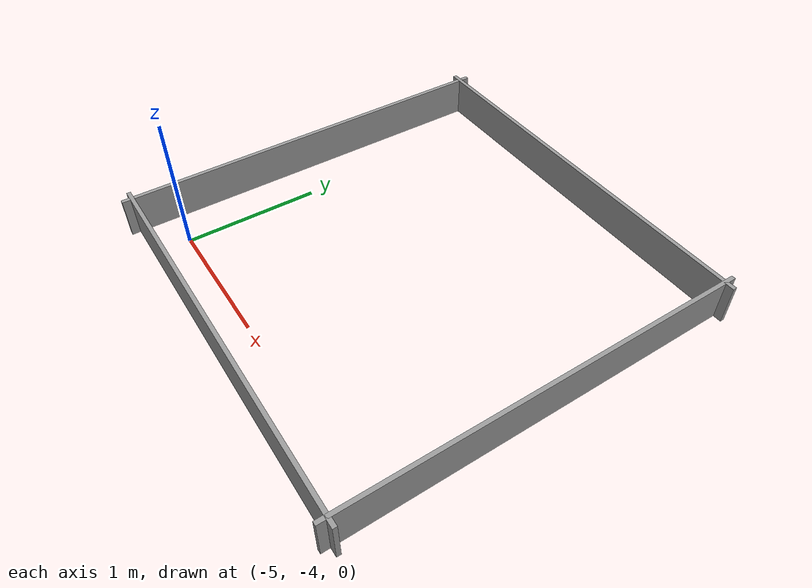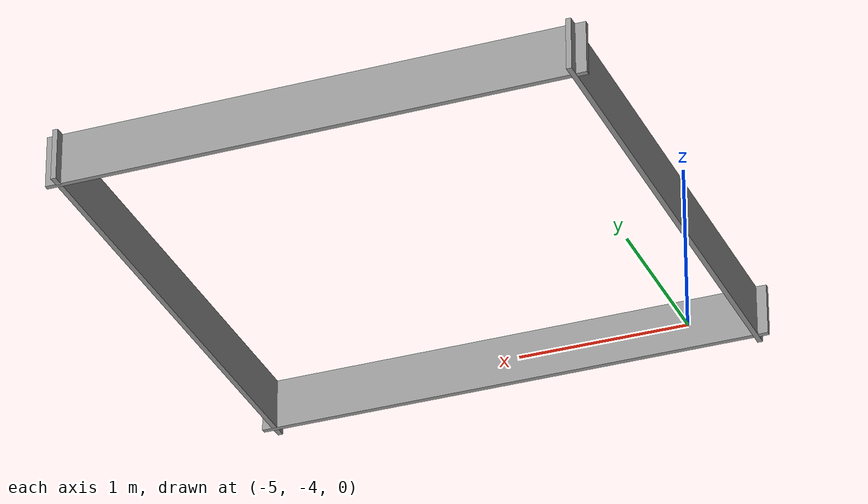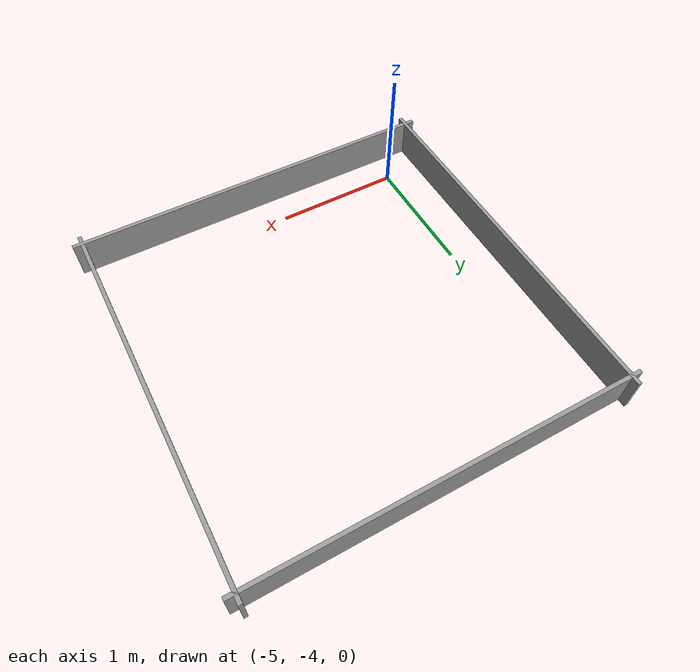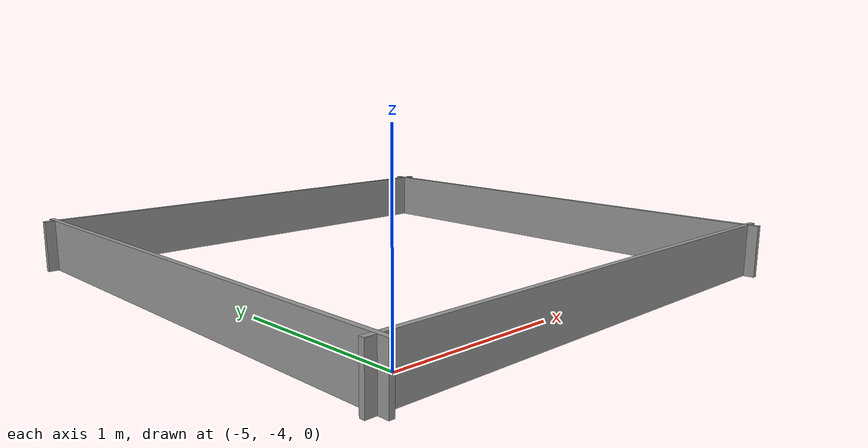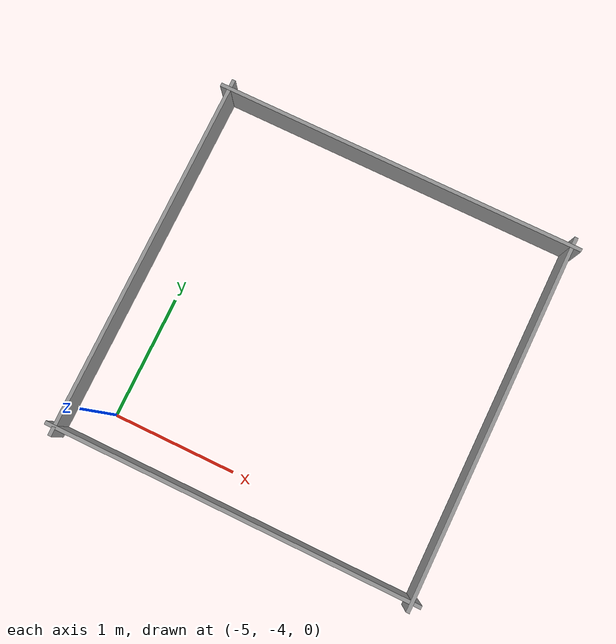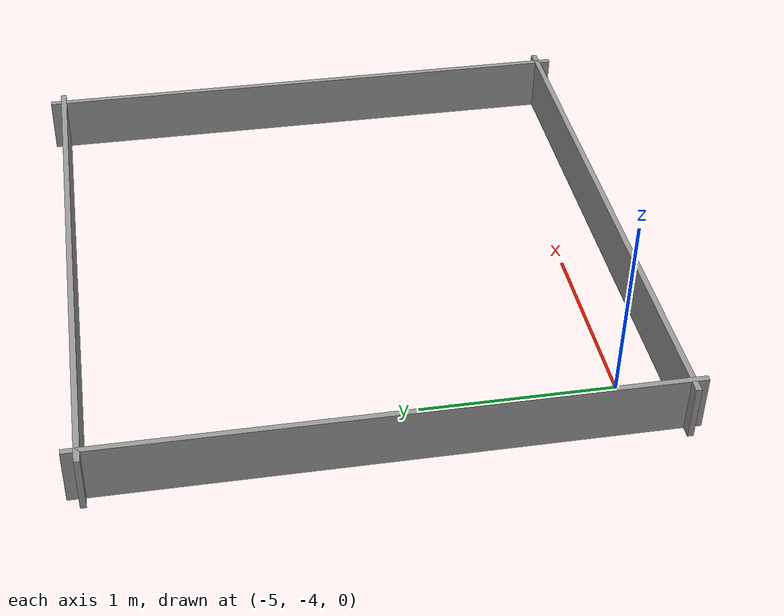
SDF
<?xml version='1.0'?>
<sdf version='1.6'>
  <model name='arena'>
    <pose frame=''>-3.859 -2.806 0 0 -0 0</pose>
    <link name='Wall_10'>
      <collision name='Wall_10_Collision'>
        <geometry>
          <box>
            <size>3.048 0.03 0.304</size>
          </box>
        </geometry>
        <pose frame=''>0 0 0.152 0 -0 0</pose>
      </collision>
      <visual name='Wall_10_Visual'>
        <pose frame=''>0 0 0.152 0 -0 0</pose>
        <geometry>
          <box>
            <size>3.048 0.03 0.304</size>
          </box>
        </geometry>
        <material>
          <script>
            <uri>file://media/materials/scripts/gazebo.material</uri>
            <name>Gazebo/Grey</name>
          </script>
          <ambient>1 1 1 1</ambient>
        </material>
        <meta>
          <layer>0</layer>
        </meta>
      </visual>
      <pose frame=''>0 1.449 0 0 -0 3.14159</pose>
    </link>
    <link name='Wall_12'>
      <collision name='Wall_12_Collision'>
        <geometry>
          <box>
            <size>3.048 0.03 0.304</size>
          </box>
        </geometry>
        <pose frame=''>0 0 0.152 0 -0 0</pose>
      </collision>
      <visual name='Wall_12_Visual'>
        <pose frame=''>0 0 0.152 0 -0 0</pose>
        <geometry>
          <box>
            <size>3.048 0.03 0.304</size>
          </box>
        </geometry>
        <material>
          <script>
            <uri>file://media/materials/scripts/gazebo.material</uri>
            <name>Gazebo/Grey</name>
          </script>
          <ambient>1 1 1 1</ambient>
        </material>
        <meta>
          <layer>0</layer>
        </meta>
      </visual>
      <pose frame=''>-1.449 0 0 0 -0 -1.5708</pose>
    </link>
    <link name='Wall_14'>
      <collision name='Wall_14_Collision'>
        <geometry>
          <box>
            <size>3.048 0.03 0.304</size>
          </box>
        </geometry>
        <pose frame=''>0 0 0.152 0 -0 0</pose>
      </collision>
      <visual name='Wall_14_Visual'>
        <pose frame=''>0 0 0.152 0 -0 0</pose>
        <geometry>
          <box>
            <size>3.048 0.03 0.304</size>
          </box>
        </geometry>
        <material>
          <script>
            <uri>file://media/materials/scripts/gazebo.material</uri>
            <name>Gazebo/Grey</name>
          </script>
          <ambient>1 1 1 1</ambient>
        </material>
        <meta>
          <layer>0</layer>
        </meta>
      </visual>
      <pose frame=''>0 -1.449 0 0 -0 0</pose>
    </link>
    <link name='Wall_8'>
      <collision name='Wall_8_Collision'>
        <geometry>
          <box>
            <size>3.048 0.03 0.304</size>
          </box>
        </geometry>
        <pose frame=''>0 0 0.152 0 -0 0</pose>
      </collision>
      <visual name='Wall_8_Visual'>
        <pose frame=''>0 0 0.152 0 -0 0</pose>
        <geometry>
          <box>
            <size>3.048 0.03 0.304</size>
          </box>
        </geometry>
        <material>
          <script>
            <uri>file://media/materials/scripts/gazebo.material</uri>
            <name>Gazebo/Grey</name>
          </script>
          <ambient>1 1 1 1</ambient>
        </material>
        <meta>
          <layer>0</layer>
        </meta>
      </visual>
      <pose frame=''>1.449 0 0 0 -0 1.5708</pose>
    </link>
    <static>1</static>
  </model>
</sdf>
